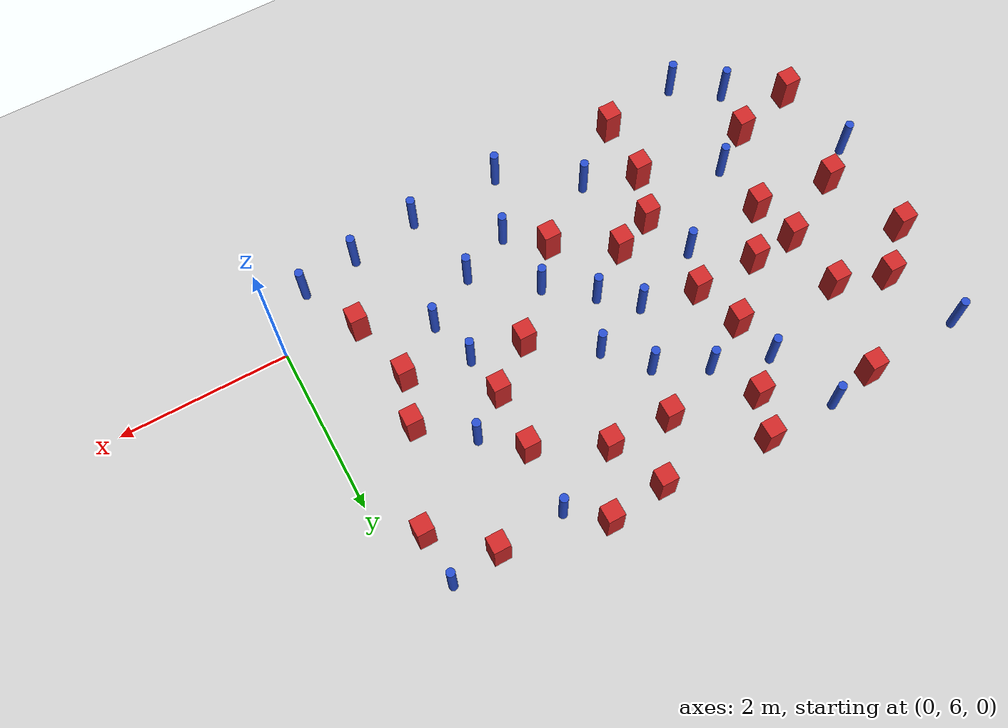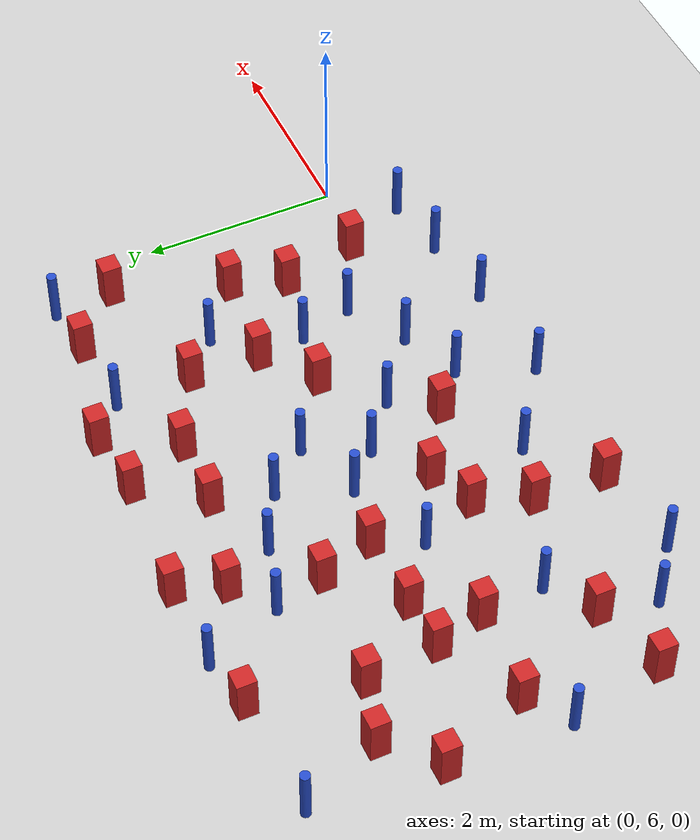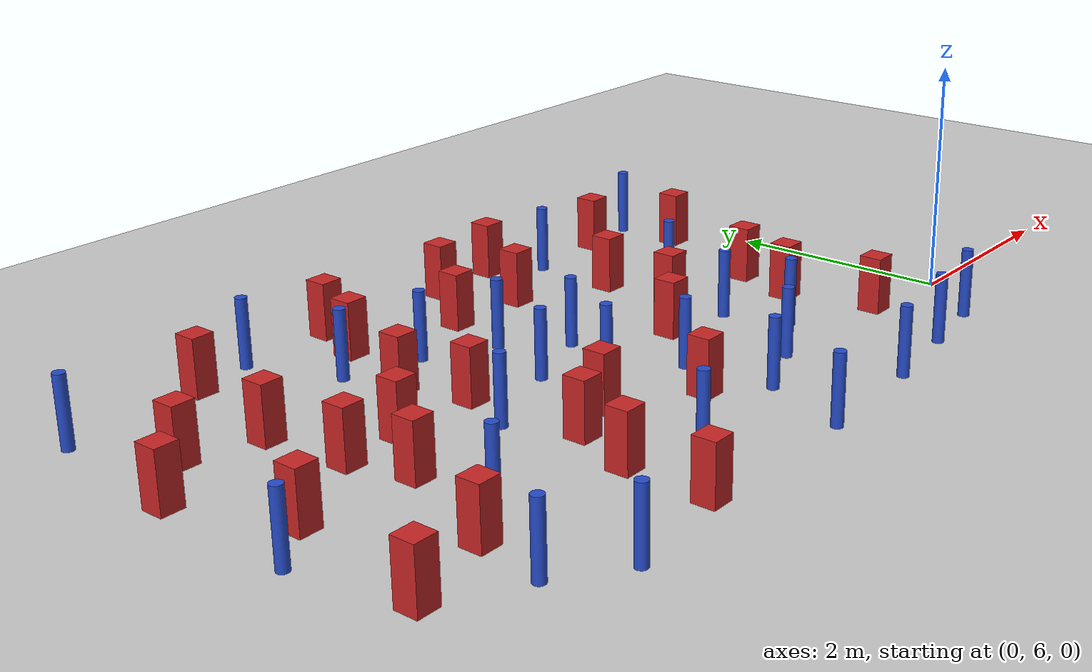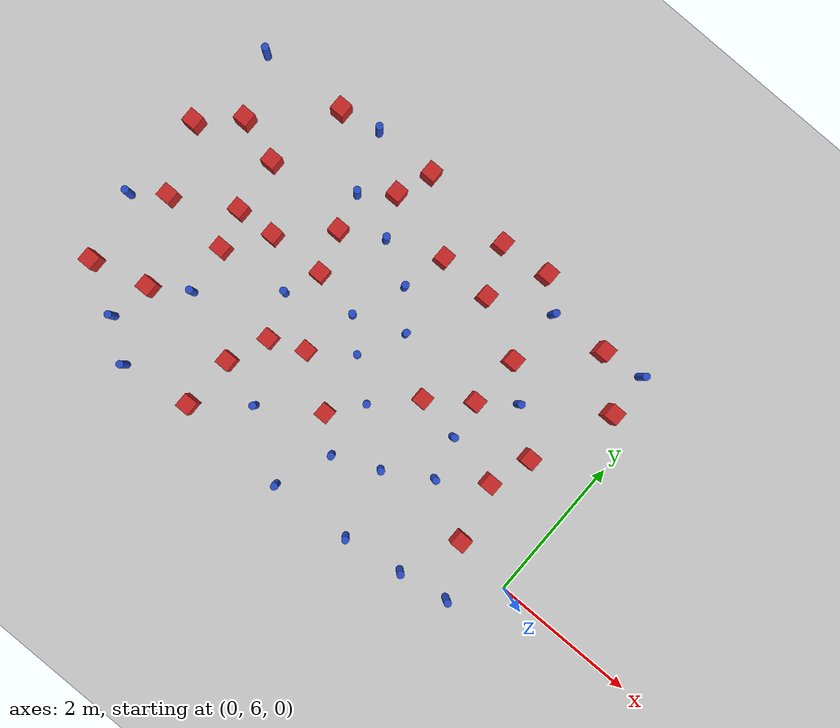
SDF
<sdf version="1.6">
 <world name="default">
  <model name="ground_plane">
   <static>1</static>
   <link name="link">
    <collision name="collision">
     <geometry><plane><normal>0 0 1</normal><size>100 100</size></plane></geometry>
     <surface><friction><ode><mu>100</mu><mu2>50</mu2></ode></friction></surface>
    </collision>
    <visual name="visual">
     <cast_shadows>0</cast_shadows>
     <geometry><plane><normal>0 0 1</normal><size>100 100</size></plane></geometry>
     <material>
      <ambient>1.0 1.0 1.0 1.0</ambient>
      <diffuse>0.8 0.8 0.8 1.0</diffuse>
      <specular>0.01 0.01 0.01 1.000000</specular>
     </material>
    </visual>
   </link>
  </model>
  <model name="pole_obstacle0">
   <static>true</static>
   <pose>-5.57891861028 5.05401400103 2.88873142074e-08 -9.90536690842e-09 4.60219948965e-07 -1.20965994976e-07</pose>
   <link name="link">
    <pose>0 0 0.3 0 -0 0</pose>
    <inertial>
     <mass>1</mass>
     <inertia><ixx>0.145833</ixx><ixy>0</ixy><ixz>0</ixz><iyy>0.145833</iyy><iyz>0</iyz><izz>0.125</izz></inertia>
    </inertial>
    <collision name="collision">
     <geometry><cylinder><radius>0.05</radius><length>.6</length></cylinder></geometry>
    </collision>
    <visual name="visual">
     <geometry><cylinder><radius>0.05</radius><length>.6</length></cylinder></geometry>
     <material>
      <script><name>Gazebo/Blue</name><uri>file://media/materials/scripts/gazebo.material</uri></script>
     </material>
    </visual>
   </link>
  </model>
  <model name="pole_obstacle5">
   <static>true</static>
   <pose>-6.9456775595 6.76392135129 2.88873142074e-08 -9.90536690842e-09 4.60219948965e-07 -1.20965994976e-07</pose>
   <link name="link">
    <pose>0 0 0.3 0 -0 0</pose>
    <inertial>
     <mass>1</mass>
     <inertia><ixx>0.145833</ixx><ixy>0</ixy><ixz>0</ixz><iyy>0.145833</iyy><iyz>0</iyz><izz>0.125</izz></inertia>
    </inertial>
    <collision name="collision">
     <geometry><cylinder><radius>0.05</radius><length>.6</length></cylinder></geometry>
    </collision>
    <visual name="visual">
     <geometry><cylinder><radius>0.05</radius><length>.6</length></cylinder></geometry>
     <material>
      <script><name>Gazebo/Blue</name><uri>file://media/materials/scripts/gazebo.material</uri></script>
     </material>
    </visual>
   </link>
  </model>
  <model name="square_post_obstacle10">
   <static>true</static>
   <pose>-6.53122453917 7.0693868356 8.22691968438e-08 7.2212513382e-06 -7.54495500217e-07 2.29674213826e-05</pose>
   <link name="link">
    <pose>0 0 0.25 0 -0 0</pose>
    <inertial>
     <mass>100</mass>
     <inertia>
      <ixx>0.166667</ixx>
      <ixy>0</ixy>
      <ixz>0</ixz>
      <iyy>0.166667</iyy>
      <iyz>0</iyz>
      <izz>0.166667</izz>
     </inertia>
    </inertial>
    <collision name="collision"><geometry><box><size>.2 .2 .5</size></box></geometry></collision>
    <visual name="visual">
     <geometry><box><size>.2 .2 .5</size></box></geometry>
     <material>
      <script><name>Gazebo/Red</name><uri>file://media/materials/scripts/gazebo.material</uri></script>
     </material>
    </visual>
   </link>
  </model>
  <model name="pole_obstacle26">
   <static>true</static>
   <pose>-3.11296527063 5.13809794333 2.88873142074e-08 -9.90536689859e-09 4.60219948989e-07 -1.20965994961e-07</pose>
   <link name="link">
    <pose>0 0 0.3 0 -0 0</pose>
    <inertial>
     <mass>1</mass>
     <inertia><ixx>0.145833</ixx><ixy>0</ixy><ixz>0</ixz><iyy>0.145833</iyy><iyz>0</iyz><izz>0.125</izz></inertia>
    </inertial>
    <collision name="collision">
     <geometry><cylinder><radius>0.05</radius><length>.6</length></cylinder></geometry>
    </collision>
    <visual name="visual">
     <geometry><cylinder><radius>0.05</radius><length>.6</length></cylinder></geometry>
     <material>
      <script><name>Gazebo/Blue</name><uri>file://media/materials/scripts/gazebo.material</uri></script>
     </material>
    </visual>
   </link>
  </model>
  <model name="square_post_obstacle20">
   <static>true</static>
   <pose>-0.419759920037 8.596462491 8.22691968438e-08 7.22125133819e-06 -7.54495500217e-07 2.29674213826e-05</pose>
   <link name="link">
    <pose>0 0 0.25 0 -0 0</pose>
    <inertial>
     <mass>100</mass>
     <inertia>
      <ixx>0.166667</ixx>
      <ixy>0</ixy>
      <ixz>0</ixz>
      <iyy>0.166667</iyy>
      <iyz>0</iyz>
      <izz>0.166667</izz>
     </inertia>
    </inertial>
    <collision name="collision"><geometry><box><size>.2 .2 .5</size></box></geometry></collision>
    <visual name="visual">
     <geometry><box><size>.2 .2 .5</size></box></geometry>
     <material>
      <script><name>Gazebo/Red</name><uri>file://media/materials/scripts/gazebo.material</uri></script>
     </material>
    </visual>
   </link>
  </model>
  <model name="square_post_obstacle22">
   <static>true</static>
   <pose>-3.22323207701 6.24411409598 8.22691968438e-08 7.2212513382e-06 -7.54495500217e-07 2.29674213826e-05</pose>
   <link name="link">
    <pose>0 0 0.25 0 -0 0</pose>
    <inertial>
     <mass>100</mass>
     <inertia>
      <ixx>0.166667</ixx>
      <ixy>0</ixy>
      <ixz>0</ixz>
      <iyy>0.166667</iyy>
      <iyz>0</iyz>
      <izz>0.166667</izz>
     </inertia>
    </inertial>
    <collision name="collision"><geometry><box><size>.2 .2 .5</size></box></geometry></collision>
    <visual name="visual">
     <geometry><box><size>.2 .2 .5</size></box></geometry>
     <material>
      <script><name>Gazebo/Red</name><uri>file://media/materials/scripts/gazebo.material</uri></script>
     </material>
    </visual>
   </link>
  </model>
  <model name="square_post_obstacle24">
   <static>true</static>
   <pose>-5.19579797531 7.54182395175 8.22691968438e-08 7.2212513382e-06 -7.54495500217e-07 2.29674213826e-05</pose>
   <link name="link">
    <pose>0 0 0.25 0 -0 0</pose>
    <inertial>
     <mass>100</mass>
     <inertia>
      <ixx>0.166667</ixx>
      <ixy>0</ixy>
      <ixz>0</ixz>
      <iyy>0.166667</iyy>
      <iyz>0</iyz>
      <izz>0.166667</izz>
     </inertia>
    </inertial>
    <collision name="collision"><geometry><box><size>.2 .2 .5</size></box></geometry></collision>
    <visual name="visual">
     <geometry><box><size>.2 .2 .5</size></box></geometry>
     <material>
      <script><name>Gazebo/Red</name><uri>file://media/materials/scripts/gazebo.material</uri></script>
     </material>
    </visual>
   </link>
  </model>
  <model name="pole_obstacle35">
   <static>true</static>
   <pose>-5.51759673734 6.32743386519 2.88873142074e-08 -9.90536690842e-09 4.60219948965e-07 -1.20965994976e-07</pose>
   <link name="link">
    <pose>0 0 0.3 0 -0 0</pose>
    <inertial>
     <mass>1</mass>
     <inertia><ixx>0.145833</ixx><ixy>0</ixy><ixz>0</ixz><iyy>0.145833</iyy><iyz>0</iyz><izz>0.125</izz></inertia>
    </inertial>
    <collision name="collision">
     <geometry><cylinder><radius>0.05</radius><length>.6</length></cylinder></geometry>
    </collision>
    <visual name="visual">
     <geometry><cylinder><radius>0.05</radius><length>.6</length></cylinder></geometry>
     <material>
      <script><name>Gazebo/Blue</name><uri>file://media/materials/scripts/gazebo.material</uri></script>
     </material>
    </visual>
   </link>
  </model>
  <model name="square_post_obstacle33">
   <static>true</static>
   <pose>-2.6142588795 8.70231124438 8.22691968438e-08 7.22125133819e-06 -7.54495500217e-07 2.29674213826e-05</pose>
   <link name="link">
    <pose>0 0 0.25 0 -0 0</pose>
    <inertial>
     <mass>100</mass>
     <inertia>
      <ixx>0.166667</ixx>
      <ixy>0</ixy>
      <ixz>0</ixz>
      <iyy>0.166667</iyy>
      <iyz>0</iyz>
      <izz>0.166667</izz>
     </inertia>
    </inertial>
    <collision name="collision"><geometry><box><size>.2 .2 .5</size></box></geometry></collision>
    <visual name="visual">
     <geometry><box><size>.2 .2 .5</size></box></geometry>
     <material>
      <script><name>Gazebo/Red</name><uri>file://media/materials/scripts/gazebo.material</uri></script>
     </material>
    </visual>
   </link>
  </model>
  <model name="pole_obstacle43">
   <static>true</static>
   <pose>-4.72144073114 8.64065696206 2.88873142074e-08 -9.9053668967e-09 4.60219948993e-07 -1.20965994957e-07</pose>
   <link name="link">
    <pose>0 0 0.3 0 -0 0</pose>
    <inertial>
     <mass>1</mass>
     <inertia><ixx>0.145833</ixx><ixy>0</ixy><ixz>0</ixz><iyy>0.145833</iyy><iyz>0</iyz><izz>0.125</izz></inertia>
    </inertial>
    <collision name="collision">
     <geometry><cylinder><radius>0.05</radius><length>.6</length></cylinder></geometry>
    </collision>
    <visual name="visual">
     <geometry><cylinder><radius>0.05</radius><length>.6</length></cylinder></geometry>
     <material>
      <script><name>Gazebo/Blue</name><uri>file://media/materials/scripts/gazebo.material</uri></script>
     </material>
    </visual>
   </link>
  </model>
  <model name="pole_obstacle47">
   <static>true</static>
   <pose>-5.02357856834 9.43363360993 2.88873142074e-08 -9.9053668967e-09 4.60219948993e-07 -1.20965994957e-07</pose>
   <link name="link">
    <pose>0 0 0.3 0 -0 0</pose>
    <inertial>
     <mass>1</mass>
     <inertia><ixx>0.145833</ixx><ixy>0</ixy><ixz>0</ixz><iyy>0.145833</iyy><iyz>0</iyz><izz>0.125</izz></inertia>
    </inertial>
    <collision name="collision">
     <geometry><cylinder><radius>0.05</radius><length>.6</length></cylinder></geometry>
    </collision>
    <visual name="visual">
     <geometry><cylinder><radius>0.05</radius><length>.6</length></cylinder></geometry>
     <material>
      <script><name>Gazebo/Blue</name><uri>file://media/materials/scripts/gazebo.material</uri></script>
     </material>
    </visual>
   </link>
  </model>
  <model name="pole_obstacle54">
   <static>true</static>
   <pose>-3.76575025793 7.42224762915 2.88873142074e-08 -9.90536689859e-09 4.60219948989e-07 -1.20965994961e-07</pose>
   <link name="link">
    <pose>0 0 0.3 0 -0 0</pose>
    <inertial>
     <mass>1</mass>
     <inertia><ixx>0.145833</ixx><ixy>0</ixy><ixz>0</ixz><iyy>0.145833</iyy><iyz>0</iyz><izz>0.125</izz></inertia>
    </inertial>
    <collision name="collision">
     <geometry><cylinder><radius>0.05</radius><length>.6</length></cylinder></geometry>
    </collision>
    <visual name="visual">
     <geometry><cylinder><radius>0.05</radius><length>.6</length></cylinder></geometry>
     <material>
      <script><name>Gazebo/Blue</name><uri>file://media/materials/scripts/gazebo.material</uri></script>
     </material>
    </visual>
   </link>
  </model>
  <model name="square_post_obstacle43">
   <static>true</static>
   <pose>-1.8283914266 8.29833452557 8.22691968438e-08 7.22125133819e-06 -7.54495500217e-07 2.29674213826e-05</pose>
   <link name="link">
    <pose>0 0 0.25 0 -0 0</pose>
    <inertial>
     <mass>100</mass>
     <inertia>
      <ixx>0.166667</ixx>
      <ixy>0</ixy>
      <ixz>0</ixz>
      <iyy>0.166667</iyy>
      <iyz>0</iyz>
      <izz>0.166667</izz>
     </inertia>
    </inertial>
    <collision name="collision"><geometry><box><size>.2 .2 .5</size></box></geometry></collision>
    <visual name="visual">
     <geometry><box><size>.2 .2 .5</size></box></geometry>
     <material>
      <script><name>Gazebo/Red</name><uri>file://media/materials/scripts/gazebo.material</uri></script>
     </material>
    </visual>
   </link>
  </model>
  <model name="square_post_obstacle64">
   <static>true</static>
   <pose>-3.91917284136 6.69324111417 8.22691968438e-08 7.2212513382e-06 -7.54495500217e-07 2.29674213826e-05</pose>
   <link name="link">
    <pose>0 0 0.25 0 -0 0</pose>
    <inertial>
     <mass>100</mass>
     <inertia>
      <ixx>0.166667</ixx>
      <ixy>0</ixy>
      <ixz>0</ixz>
      <iyy>0.166667</iyy>
      <iyz>0</iyz>
      <izz>0.166667</izz>
     </inertia>
    </inertial>
    <collision name="collision"><geometry><box><size>.2 .2 .5</size></box></geometry></collision>
    <visual name="visual">
     <geometry><box><size>.2 .2 .5</size></box></geometry>
     <material>
      <script><name>Gazebo/Red</name><uri>file://media/materials/scripts/gazebo.material</uri></script>
     </material>
    </visual>
   </link>
  </model>
  <model name="square_post_obstacle70">
   <static>true</static>
   <pose>-5.56504112645 9.3236796473 8.22691968438e-08 7.22125133819e-06 -7.54495500217e-07 2.29674213826e-05</pose>
   <link name="link">
    <pose>0 0 0.25 0 -0 0</pose>
    <inertial>
     <mass>100</mass>
     <inertia>
      <ixx>0.166667</ixx>
      <ixy>0</ixy>
      <ixz>0</ixz>
      <iyy>0.166667</iyy>
      <iyz>0</iyz>
      <izz>0.166667</izz>
     </inertia>
    </inertial>
    <collision name="collision"><geometry><box><size>.2 .2 .5</size></box></geometry></collision>
    <visual name="visual">
     <geometry><box><size>.2 .2 .5</size></box></geometry>
     <material>
      <script><name>Gazebo/Red</name><uri>file://media/materials/scripts/gazebo.material</uri></script>
     </material>
    </visual>
   </link>
  </model>
  <model name="pole_obstacle82">
   <static>true</static>
   <pose>-3.48963450074 8.12697911955 2.88873142074e-08 -9.9053668994e-09 4.60219948987e-07 -1.20965994963e-07</pose>
   <link name="link">
    <pose>0 0 0.3 0 -0 0</pose>
    <inertial>
     <mass>1</mass>
     <inertia><ixx>0.145833</ixx><ixy>0</ixy><ixz>0</ixz><iyy>0.145833</iyy><iyz>0</iyz><izz>0.125</izz></inertia>
    </inertial>
    <collision name="collision">
     <geometry><cylinder><radius>0.05</radius><length>.6</length></cylinder></geometry>
    </collision>
    <visual name="visual">
     <geometry><cylinder><radius>0.05</radius><length>.6</length></cylinder></geometry>
     <material>
      <script><name>Gazebo/Blue</name><uri>file://media/materials/scripts/gazebo.material</uri></script>
     </material>
    </visual>
   </link>
  </model>
  <model name="square_post_obstacle72">
   <static>true</static>
   <pose>-5.81052839452 8.25103124499 8.22691968438e-08 7.22125133819e-06 -7.54495500217e-07 2.29674213826e-05</pose>
   <link name="link">
    <pose>0 0 0.25 0 -0 0</pose>
    <inertial>
     <mass>100</mass>
     <inertia>
      <ixx>0.166667</ixx>
      <ixy>0</ixy>
      <ixz>0</ixz>
      <iyy>0.166667</iyy>
      <iyz>0</iyz>
      <izz>0.166667</izz>
     </inertia>
    </inertial>
    <collision name="collision"><geometry><box><size>.2 .2 .5</size></box></geometry></collision>
    <visual name="visual">
     <geometry><box><size>.2 .2 .5</size></box></geometry>
     <material>
      <script><name>Gazebo/Red</name><uri>file://media/materials/scripts/gazebo.material</uri></script>
     </material>
    </visual>
   </link>
  </model>
  <model name="square_post_obstacle81">
   <static>true</static>
   <pose>-1.03929450827 6.91394550762 8.22691968438e-08 7.2212513382e-06 -7.54495500217e-07 2.29674213826e-05</pose>
   <link name="link">
    <pose>0 0 0.25 0 -0 0</pose>
    <inertial>
     <mass>100</mass>
     <inertia>
      <ixx>0.166667</ixx>
      <ixy>0</ixy>
      <ixz>0</ixz>
      <iyy>0.166667</iyy>
      <iyz>0</iyz>
      <izz>0.166667</izz>
     </inertia>
    </inertial>
    <collision name="collision"><geometry><box><size>.2 .2 .5</size></box></geometry></collision>
    <visual name="visual">
     <geometry><box><size>.2 .2 .5</size></box></geometry>
     <material>
      <script><name>Gazebo/Red</name><uri>file://media/materials/scripts/gazebo.material</uri></script>
     </material>
    </visual>
   </link>
  </model>
  <model name="square_post_obstacle87">
   <static>true</static>
   <pose>-4.33491041556 8.96253109662 8.22691968438e-08 7.22125133819e-06 -7.54495500217e-07 2.29674213826e-05</pose>
   <link name="link">
    <pose>0 0 0.25 0 -0 0</pose>
    <inertial>
     <mass>100</mass>
     <inertia>
      <ixx>0.166667</ixx>
      <ixy>0</ixy>
      <ixz>0</ixz>
      <iyy>0.166667</iyy>
      <iyz>0</iyz>
      <izz>0.166667</izz>
     </inertia>
    </inertial>
    <collision name="collision"><geometry><box><size>.2 .2 .5</size></box></geometry></collision>
    <visual name="visual">
     <geometry><box><size>.2 .2 .5</size></box></geometry>
     <material>
      <script><name>Gazebo/Red</name><uri>file://media/materials/scripts/gazebo.material</uri></script>
     </material>
    </visual>
   </link>
  </model>
  <model name="pole_obstacle96">
   <static>true</static>
   <pose>-0.443224371358 9.20321912783 2.88873142074e-08 -9.90536691079e-09 4.6021994896e-07 -1.2096599498e-07</pose>
   <link name="link">
    <pose>0 0 0.3 0 -0 0</pose>
    <inertial>
     <mass>1</mass>
     <inertia><ixx>0.145833</ixx><ixy>0</ixy><ixz>0</ixz><iyy>0.145833</iyy><iyz>0</iyz><izz>0.125</izz></inertia>
    </inertial>
    <collision name="collision">
     <geometry><cylinder><radius>0.05</radius><length>.6</length></cylinder></geometry>
    </collision>
    <visual name="visual">
     <geometry><cylinder><radius>0.05</radius><length>.6</length></cylinder></geometry>
     <material>
      <script><name>Gazebo/Blue</name><uri>file://media/materials/scripts/gazebo.material</uri></script>
     </material>
    </visual>
   </link>
  </model>
  <model name="square_post_obstacle95">
   <static>true</static>
   <pose>-6.42129869142 8.44312369165 8.22691968438e-08 7.22125133819e-06 -7.54495500217e-07 2.29674213826e-05</pose>
   <link name="link">
    <pose>0 0 0.25 0 -0 0</pose>
    <inertial>
     <mass>100</mass>
     <inertia>
      <ixx>0.166667</ixx>
      <ixy>0</ixy>
      <ixz>0</ixz>
      <iyy>0.166667</iyy>
      <iyz>0</iyz>
      <izz>0.166667</izz>
     </inertia>
    </inertial>
    <collision name="collision"><geometry><box><size>.2 .2 .5</size></box></geometry></collision>
    <visual name="visual">
     <geometry><box><size>.2 .2 .5</size></box></geometry>
     <material>
      <script><name>Gazebo/Red</name><uri>file://media/materials/scripts/gazebo.material</uri></script>
     </material>
    </visual>
   </link>
  </model>
  <model name="square_post_obstacle96">
   <static>true</static>
   <pose>-2.89417581011 9.34482976148 8.22691968438e-08 7.22125133819e-06 -7.54495500217e-07 2.29674213826e-05</pose>
   <link name="link">
    <pose>0 0 0.25 0 -0 0</pose>
    <inertial>
     <mass>100</mass>
     <inertia>
      <ixx>0.166667</ixx>
      <ixy>0</ixy>
      <ixz>0</ixz>
      <iyy>0.166667</iyy>
      <iyz>0</iyz>
      <izz>0.166667</izz>
     </inertia>
    </inertial>
    <collision name="collision"><geometry><box><size>.2 .2 .5</size></box></geometry></collision>
    <visual name="visual">
     <geometry><box><size>.2 .2 .5</size></box></geometry>
     <material>
      <script><name>Gazebo/Red</name><uri>file://media/materials/scripts/gazebo.material</uri></script>
     </material>
    </visual>
   </link>
  </model>
  <model name="pole_obstacle105">
   <static>true</static>
   <pose>-0.507849724913 5.42630105693 2.88873142074e-08 -9.90536689526e-09 4.60219948997e-07 -1.20965994955e-07</pose>
   <link name="link">
    <pose>0 0 0.3 0 -0 0</pose>
    <inertial>
     <mass>1</mass>
     <inertia><ixx>0.145833</ixx><ixy>0</ixy><ixz>0</ixz><iyy>0.145833</iyy><iyz>0</iyz><izz>0.125</izz></inertia>
    </inertial>
    <collision name="collision">
     <geometry><cylinder><radius>0.05</radius><length>.6</length></cylinder></geometry>
    </collision>
    <visual name="visual">
     <geometry><cylinder><radius>0.05</radius><length>.6</length></cylinder></geometry>
     <material>
      <script><name>Gazebo/Blue</name><uri>file://media/materials/scripts/gazebo.material</uri></script>
     </material>
    </visual>
   </link>
  </model>
  <model name="square_post_obstacle101">
   <static>true</static>
   <pose>-5.98499967958 6.01644338964 8.22691968438e-08 7.2212513382e-06 -7.54495500217e-07 2.29674213826e-05</pose>
   <link name="link">
    <pose>0 0 0.25 0 -0 0</pose>
    <inertial>
     <mass>100</mass>
     <inertia>
      <ixx>0.166667</ixx>
      <ixy>0</ixy>
      <ixz>0</ixz>
      <iyy>0.166667</iyy>
      <iyz>0</iyz>
      <izz>0.166667</izz>
     </inertia>
    </inertial>
    <collision name="collision"><geometry><box><size>.2 .2 .5</size></box></geometry></collision>
    <visual name="visual">
     <geometry><box><size>.2 .2 .5</size></box></geometry>
     <material>
      <script><name>Gazebo/Red</name><uri>file://media/materials/scripts/gazebo.material</uri></script>
     </material>
    </visual>
   </link>
  </model>
  <model name="pole_obstacle110">
   <static>true</static>
   <pose>-1.81818910731 9.08077222713 2.88873142074e-08 -9.90536690474e-09 4.60219948974e-07 -1.2096599497e-07</pose>
   <link name="link">
    <pose>0 0 0.3 0 -0 0</pose>
    <inertial>
     <mass>1</mass>
     <inertia><ixx>0.145833</ixx><ixy>0</ixy><ixz>0</ixz><iyy>0.145833</iyy><iyz>0</iyz><izz>0.125</izz></inertia>
    </inertial>
    <collision name="collision">
     <geometry><cylinder><radius>0.05</radius><length>.6</length></cylinder></geometry>
    </collision>
    <visual name="visual">
     <geometry><cylinder><radius>0.05</radius><length>.6</length></cylinder></geometry>
     <material>
      <script><name>Gazebo/Blue</name><uri>file://media/materials/scripts/gazebo.material</uri></script>
     </material>
    </visual>
   </link>
  </model>
  <model name="pole_obstacle112">
   <static>true</static>
   <pose>-6.76005701278 9.26242866669 2.88873142074e-08 -9.9053668967e-09 4.60219948993e-07 -1.20965994957e-07</pose>
   <link name="link">
    <pose>0 0 0.3 0 -0 0</pose>
    <inertial>
     <mass>1</mass>
     <inertia><ixx>0.145833</ixx><ixy>0</ixy><ixz>0</ixz><iyy>0.145833</iyy><iyz>0</iyz><izz>0.125</izz></inertia>
    </inertial>
    <collision name="collision">
     <geometry><cylinder><radius>0.05</radius><length>.6</length></cylinder></geometry>
    </collision>
    <visual name="visual">
     <geometry><cylinder><radius>0.05</radius><length>.6</length></cylinder></geometry>
     <material>
      <script><name>Gazebo/Blue</name><uri>file://media/materials/scripts/gazebo.material</uri></script>
     </material>
    </visual>
   </link>
  </model>
  <model name="pole_obstacle113">
   <static>true</static>
   <pose>-1.41113026519 7.92368047018 2.88873142074e-08 -9.90536689852e-09 4.60219948989e-07 -1.2096599496e-07</pose>
   <link name="link">
    <pose>0 0 0.3 0 -0 0</pose>
    <inertial>
     <mass>1</mass>
     <inertia><ixx>0.145833</ixx><ixy>0</ixy><ixz>0</ixz><iyy>0.145833</iyy><iyz>0</iyz><izz>0.125</izz></inertia>
    </inertial>
    <collision name="collision">
     <geometry><cylinder><radius>0.05</radius><length>.6</length></cylinder></geometry>
    </collision>
    <visual name="visual">
     <geometry><cylinder><radius>0.05</radius><length>.6</length></cylinder></geometry>
     <material>
      <script><name>Gazebo/Blue</name><uri>file://media/materials/scripts/gazebo.material</uri></script>
     </material>
    </visual>
   </link>
  </model>
  <model name="pole_obstacle114">
   <static>true</static>
   <pose>-1.61220837633 6.50415180608 2.88873142074e-08 -9.90536689852e-09 4.60219948989e-07 -1.2096599496e-07</pose>
   <link name="link">
    <pose>0 0 0.3 0 -0 0</pose>
    <inertial>
     <mass>1</mass>
     <inertia><ixx>0.145833</ixx><ixy>0</ixy><ixz>0</ixz><iyy>0.145833</iyy><iyz>0</iyz><izz>0.125</izz></inertia>
    </inertial>
    <collision name="collision">
     <geometry><cylinder><radius>0.05</radius><length>.6</length></cylinder></geometry>
    </collision>
    <visual name="visual">
     <geometry><cylinder><radius>0.05</radius><length>.6</length></cylinder></geometry>
     <material>
      <script><name>Gazebo/Blue</name><uri>file://media/materials/scripts/gazebo.material</uri></script>
     </material>
    </visual>
   </link>
  </model>
  <model name="square_post_obstacle114">
   <static>true</static>
   <pose>-5.72959952586 7.5103818812 8.22691968438e-08 7.22125133819e-06 -7.54495500217e-07 2.29674213826e-05</pose>
   <link name="link">
    <pose>0 0 0.25 0 -0 0</pose>
    <inertial>
     <mass>100</mass>
     <inertia>
      <ixx>0.166667</ixx>
      <ixy>0</ixy>
      <ixz>0</ixz>
      <iyy>0.166667</iyy>
      <iyz>0</iyz>
      <izz>0.166667</izz>
     </inertia>
    </inertial>
    <collision name="collision"><geometry><box><size>.2 .2 .5</size></box></geometry></collision>
    <visual name="visual">
     <geometry><box><size>.2 .2 .5</size></box></geometry>
     <material>
      <script><name>Gazebo/Red</name><uri>file://media/materials/scripts/gazebo.material</uri></script>
     </material>
    </visual>
   </link>
  </model>
  <model name="square_post_obstacle116">
   <static>true</static>
   <pose>-2.20853343337 9.41474988193 8.22691968438e-08 7.22125133819e-06 -7.54495500217e-07 2.29674213826e-05</pose>
   <link name="link">
    <pose>0 0 0.25 0 -0 0</pose>
    <inertial>
     <mass>100</mass>
     <inertia>
      <ixx>0.166667</ixx>
      <ixy>0</ixy>
      <ixz>0</ixz>
      <iyy>0.166667</iyy>
      <iyz>0</iyz>
      <izz>0.166667</izz>
     </inertia>
    </inertial>
    <collision name="collision"><geometry><box><size>.2 .2 .5</size></box></geometry></collision>
    <visual name="visual">
     <geometry><box><size>.2 .2 .5</size></box></geometry>
     <material>
      <script><name>Gazebo/Red</name><uri>file://media/materials/scripts/gazebo.material</uri></script>
     </material>
    </visual>
   </link>
  </model>
  <model name="square_post_obstacle124">
   <static>true</static>
   <pose>-0.852868042163 6.11687720599 8.22691968438e-08 7.2212513382e-06 -7.54495500217e-07 2.29674213826e-05</pose>
   <link name="link">
    <pose>0 0 0.25 0 -0 0</pose>
    <inertial>
     <mass>100</mass>
     <inertia>
      <ixx>0.166667</ixx>
      <ixy>0</ixy>
      <ixz>0</ixz>
      <iyy>0.166667</iyy>
      <iyz>0</iyz>
      <izz>0.166667</izz>
     </inertia>
    </inertial>
    <collision name="collision"><geometry><box><size>.2 .2 .5</size></box></geometry></collision>
    <visual name="visual">
     <geometry><box><size>.2 .2 .5</size></box></geometry>
     <material>
      <script><name>Gazebo/Red</name><uri>file://media/materials/scripts/gazebo.material</uri></script>
     </material>
    </visual>
   </link>
  </model>
  <model name="square_post_obstacle126">
   <static>true</static>
   <pose>-4.42297959339 7.55997669663 8.22691968438e-08 7.2212513382e-06 -7.54495500217e-07 2.29674213826e-05</pose>
   <link name="link">
    <pose>0 0 0.25 0 -0 0</pose>
    <inertial>
     <mass>100</mass>
     <inertia>
      <ixx>0.166667</ixx>
      <ixy>0</ixy>
      <ixz>0</ixz>
      <iyy>0.166667</iyy>
      <iyz>0</iyz>
      <izz>0.166667</izz>
     </inertia>
    </inertial>
    <collision name="collision"><geometry><box><size>.2 .2 .5</size></box></geometry></collision>
    <visual name="visual">
     <geometry><box><size>.2 .2 .5</size></box></geometry>
     <material>
      <script><name>Gazebo/Red</name><uri>file://media/materials/scripts/gazebo.material</uri></script>
     </material>
    </visual>
   </link>
  </model>
  <model name="square_post_obstacle127">
   <static>true</static>
   <pose>-6.75137938797 5.8092934379 8.22691968438e-08 7.22125133819e-06 -7.54495500217e-07 2.29674213826e-05</pose>
   <link name="link">
    <pose>0 0 0.25 0 -0 0</pose>
    <inertial>
     <mass>100</mass>
     <inertia>
      <ixx>0.166667</ixx>
      <ixy>0</ixy>
      <ixz>0</ixz>
      <iyy>0.166667</iyy>
      <iyz>0</iyz>
      <izz>0.166667</izz>
     </inertia>
    </inertial>
    <collision name="collision"><geometry><box><size>.2 .2 .5</size></box></geometry></collision>
    <visual name="visual">
     <geometry><box><size>.2 .2 .5</size></box></geometry>
     <material>
      <script><name>Gazebo/Red</name><uri>file://media/materials/scripts/gazebo.material</uri></script>
     </material>
    </visual>
   </link>
  </model>
  <model name="pole_obstacle139">
   <static>true</static>
   <pose>-3.09072428553 7.67764305186 2.88873142074e-08 -9.90536689859e-09 4.60219948989e-07 -1.20965994961e-07</pose>
   <link name="link">
    <pose>0 0 0.3 0 -0 0</pose>
    <inertial>
     <mass>1</mass>
     <inertia><ixx>0.145833</ixx><ixy>0</ixy><ixz>0</ixz><iyy>0.145833</iyy><iyz>0</iyz><izz>0.125</izz></inertia>
    </inertial>
    <collision name="collision">
     <geometry><cylinder><radius>0.05</radius><length>.6</length></cylinder></geometry>
    </collision>
    <visual name="visual">
     <geometry><cylinder><radius>0.05</radius><length>.6</length></cylinder></geometry>
     <material>
      <script><name>Gazebo/Blue</name><uri>file://media/materials/scripts/gazebo.material</uri></script>
     </material>
    </visual>
   </link>
  </model>
  <model name="square_post_obstacle136">
   <static>true</static>
   <pose>-2.39104929264 7.18079778772 8.22691968438e-08 7.2212513382e-06 -7.54495500217e-07 2.29674213826e-05</pose>
   <link name="link">
    <pose>0 0 0.25 0 -0 0</pose>
    <inertial>
     <mass>100</mass>
     <inertia>
      <ixx>0.166667</ixx>
      <ixy>0</ixy>
      <ixz>0</ixz>
      <iyy>0.166667</iyy>
      <iyz>0</iyz>
      <izz>0.166667</izz>
     </inertia>
    </inertial>
    <collision name="collision"><geometry><box><size>.2 .2 .5</size></box></geometry></collision>
    <visual name="visual">
     <geometry><box><size>.2 .2 .5</size></box></geometry>
     <material>
      <script><name>Gazebo/Red</name><uri>file://media/materials/scripts/gazebo.material</uri></script>
     </material>
    </visual>
   </link>
  </model>
  <model name="pole_obstacle147">
   <static>true</static>
   <pose>-2.89303400616 6.67125134117 2.88873142074e-08 -9.90536689859e-09 4.60219948989e-07 -1.20965994961e-07</pose>
   <link name="link">
    <pose>0 0 0.3 0 -0 0</pose>
    <inertial>
     <mass>1</mass>
     <inertia><ixx>0.145833</ixx><ixy>0</ixy><ixz>0</ixz><iyy>0.145833</iyy><iyz>0</iyz><izz>0.125</izz></inertia>
    </inertial>
    <collision name="collision">
     <geometry><cylinder><radius>0.05</radius><length>.6</length></cylinder></geometry>
    </collision>
    <visual name="visual">
     <geometry><cylinder><radius>0.05</radius><length>.6</length></cylinder></geometry>
     <material>
      <script><name>Gazebo/Blue</name><uri>file://media/materials/scripts/gazebo.material</uri></script>
     </material>
    </visual>
   </link>
  </model>
  <model name="square_post_obstacle142">
   <static>true</static>
   <pose>-4.60203687464 5.94385006545 8.22691968438e-08 7.2212513382e-06 -7.54495500217e-07 2.29674213826e-05</pose>
   <link name="link">
    <pose>0 0 0.25 0 -0 0</pose>
    <inertial>
     <mass>100</mass>
     <inertia>
      <ixx>0.166667</ixx>
      <ixy>0</ixy>
      <ixz>0</ixz>
      <iyy>0.166667</iyy>
      <iyz>0</iyz>
      <izz>0.166667</izz>
     </inertia>
    </inertial>
    <collision name="collision"><geometry><box><size>.2 .2 .5</size></box></geometry></collision>
    <visual name="visual">
     <geometry><box><size>.2 .2 .5</size></box></geometry>
     <material>
      <script><name>Gazebo/Red</name><uri>file://media/materials/scripts/gazebo.material</uri></script>
     </material>
    </visual>
   </link>
  </model>
  <model name="pole_obstacle155">
   <static>true</static>
   <pose>-4.61039042547 7.08168243301 2.88873142074e-08 -9.90536690842e-09 4.60219948965e-07 -1.20965994976e-07</pose>
   <link name="link">
    <pose>0 0 0.3 0 -0 0</pose>
    <inertial>
     <mass>1</mass>
     <inertia><ixx>0.145833</ixx><ixy>0</ixy><ixz>0</ixz><iyy>0.145833</iyy><iyz>0</iyz><izz>0.125</izz></inertia>
    </inertial>
    <collision name="collision">
     <geometry><cylinder><radius>0.05</radius><length>.6</length></cylinder></geometry>
    </collision>
    <visual name="visual">
     <geometry><cylinder><radius>0.05</radius><length>.6</length></cylinder></geometry>
     <material>
      <script><name>Gazebo/Blue</name><uri>file://media/materials/scripts/gazebo.material</uri></script>
     </material>
    </visual>
   </link>
  </model>
  <model name="square_post_obstacle152">
   <static>true</static>
   <pose>-4.16327347663 9.44290378722 8.22691968438e-08 7.22125133819e-06 -7.54495500217e-07 2.29674213826e-05</pose>
   <link name="link">
    <pose>0 0 0.25 0 -0 0</pose>
    <inertial>
     <mass>100</mass>
     <inertia>
      <ixx>0.166667</ixx>
      <ixy>0</ixy>
      <ixz>0</ixz>
      <iyy>0.166667</iyy>
      <iyz>0</iyz>
      <izz>0.166667</izz>
     </inertia>
    </inertial>
    <collision name="collision"><geometry><box><size>.2 .2 .5</size></box></geometry></collision>
    <visual name="visual">
     <geometry><box><size>.2 .2 .5</size></box></geometry>
     <material>
      <script><name>Gazebo/Red</name><uri>file://media/materials/scripts/gazebo.material</uri></script>
     </material>
    </visual>
   </link>
  </model>
  <model name="pole_obstacle158">
   <static>true</static>
   <pose>-3.97282030269 5.73217686249 2.88873142074e-08 -9.90536690054e-09 4.60219948984e-07 -1.20965994964e-07</pose>
   <link name="link">
    <pose>0 0 0.3 0 -0 0</pose>
    <inertial>
     <mass>1</mass>
     <inertia><ixx>0.145833</ixx><ixy>0</ixy><ixz>0</ixz><iyy>0.145833</iyy><iyz>0</iyz><izz>0.125</izz></inertia>
    </inertial>
    <collision name="collision">
     <geometry><cylinder><radius>0.05</radius><length>.6</length></cylinder></geometry>
    </collision>
    <visual name="visual">
     <geometry><cylinder><radius>0.05</radius><length>.6</length></cylinder></geometry>
     <material>
      <script><name>Gazebo/Blue</name><uri>file://media/materials/scripts/gazebo.material</uri></script>
     </material>
    </visual>
   </link>
  </model>
  <model name="square_post_obstacle162">
   <static>true</static>
   <pose>-4.38404041923 6.49928075124 8.22691968438e-08 7.22125133819e-06 -7.54495500217e-07 2.29674213826e-05</pose>
   <link name="link">
    <pose>0 0 0.25 0 -0 0</pose>
    <inertial>
     <mass>100</mass>
     <inertia>
      <ixx>0.166667</ixx>
      <ixy>0</ixy>
      <ixz>0</ixz>
      <iyy>0.166667</iyy>
      <iyz>0</iyz>
      <izz>0.166667</izz>
     </inertia>
    </inertial>
    <collision name="collision"><geometry><box><size>.2 .2 .5</size></box></geometry></collision>
    <visual name="visual">
     <geometry><box><size>.2 .2 .5</size></box></geometry>
     <material>
      <script><name>Gazebo/Red</name><uri>file://media/materials/scripts/gazebo.material</uri></script>
     </material>
    </visual>
   </link>
  </model>
  <model name="square_post_obstacle171">
   <static>true</static>
   <pose>-1.85521543495 7.58462084864 8.22691968438e-08 7.2212513382e-06 -7.54495500217e-07 2.29674213826e-05</pose>
   <link name="link">
    <pose>0 0 0.25 0 -0 0</pose>
    <inertial>
     <mass>100</mass>
     <inertia>
      <ixx>0.166667</ixx>
      <ixy>0</ixy>
      <ixz>0</ixz>
      <iyy>0.166667</iyy>
      <iyz>0</iyz>
      <izz>0.166667</izz>
     </inertia>
    </inertial>
    <collision name="collision"><geometry><box><size>.2 .2 .5</size></box></geometry></collision>
    <visual name="visual">
     <geometry><box><size>.2 .2 .5</size></box></geometry>
     <material>
      <script><name>Gazebo/Red</name><uri>file://media/materials/scripts/gazebo.material</uri></script>
     </material>
    </visual>
   </link>
  </model>
  <model name="pole_obstacle170">
   <static>true</static>
   <pose>-6.09835040776 5.43257280285 2.88873142074e-08 -9.90536690842e-09 4.60219948965e-07 -1.20965994976e-07</pose>
   <link name="link">
    <pose>0 0 0.3 0 -0 0</pose>
    <inertial>
     <mass>1</mass>
     <inertia><ixx>0.145833</ixx><ixy>0</ixy><ixz>0</ixz><iyy>0.145833</iyy><iyz>0</iyz><izz>0.125</izz></inertia>
    </inertial>
    <collision name="collision">
     <geometry><cylinder><radius>0.05</radius><length>.6</length></cylinder></geometry>
    </collision>
    <visual name="visual">
     <geometry><cylinder><radius>0.05</radius><length>.6</length></cylinder></geometry>
     <material>
      <script><name>Gazebo/Blue</name><uri>file://media/materials/scripts/gazebo.material</uri></script>
     </material>
    </visual>
   </link>
  </model>
  <model name="pole_obstacle171">
   <static>true</static>
   <pose>-3.39062524326 7.07097245644 2.88873142074e-08 -9.90536692062e-09 4.60219948937e-07 -1.20965994985e-07</pose>
   <link name="link">
    <pose>0 0 0.3 0 -0 0</pose>
    <inertial>
     <mass>1</mass>
     <inertia><ixx>0.145833</ixx><ixy>0</ixy><ixz>0</ixz><iyy>0.145833</iyy><iyz>0</iyz><izz>0.125</izz></inertia>
    </inertial>
    <collision name="collision">
     <geometry><cylinder><radius>0.05</radius><length>.6</length></cylinder></geometry>
    </collision>
    <visual name="visual">
     <geometry><cylinder><radius>0.05</radius><length>.6</length></cylinder></geometry>
     <material>
      <script><name>Gazebo/Blue</name><uri>file://media/materials/scripts/gazebo.material</uri></script>
     </material>
    </visual>
   </link>
  </model>
  <model name="pole_obstacle176">
   <static>true</static>
   <pose>-2.21392780671 6.14761793868 2.88873142074e-08 -9.90536689859e-09 4.60219948989e-07 -1.20965994961e-07</pose>
   <link name="link">
    <pose>0 0 0.3 0 -0 0</pose>
    <inertial>
     <mass>1</mass>
     <inertia><ixx>0.145833</ixx><ixy>0</ixy><ixz>0</ixz><iyy>0.145833</iyy><iyz>0</iyz><izz>0.125</izz></inertia>
    </inertial>
    <collision name="collision">
     <geometry><cylinder><radius>0.05</radius><length>.6</length></cylinder></geometry>
    </collision>
    <visual name="visual">
     <geometry><cylinder><radius>0.05</radius><length>.6</length></cylinder></geometry>
     <material>
      <script><name>Gazebo/Blue</name><uri>file://media/materials/scripts/gazebo.material</uri></script>
     </material>
    </visual>
   </link>
  </model>
  <model name="pole_obstacle179">
   <static>true</static>
   <pose>-1.77732134994 7.06510277668 2.88873142074e-08 -9.90536689852e-09 4.60219948989e-07 -1.2096599496e-07</pose>
   <link name="link">
    <pose>0 0 0.3 0 -0 0</pose>
    <inertial>
     <mass>1</mass>
     <inertia><ixx>0.145833</ixx><ixy>0</ixy><ixz>0</ixz><iyy>0.145833</iyy><iyz>0</iyz><izz>0.125</izz></inertia>
    </inertial>
    <collision name="collision">
     <geometry><cylinder><radius>0.05</radius><length>.6</length></cylinder></geometry>
    </collision>
    <visual name="visual">
     <geometry><cylinder><radius>0.05</radius><length>.6</length></cylinder></geometry>
     <material>
      <script><name>Gazebo/Blue</name><uri>file://media/materials/scripts/gazebo.material</uri></script>
     </material>
    </visual>
   </link>
  </model>
  <model name="square_post_obstacle178">
   <static>true</static>
   <pose>-5.58552979842 6.98756674252 8.22691968438e-08 7.2212513382e-06 -7.54495500217e-07 2.29674213826e-05</pose>
   <link name="link">
    <pose>0 0 0.25 0 -0 0</pose>
    <inertial>
     <mass>100</mass>
     <inertia>
      <ixx>0.166667</ixx>
      <ixy>0</ixy>
      <ixz>0</ixz>
      <iyy>0.166667</iyy>
      <iyz>0</iyz>
      <izz>0.166667</izz>
     </inertia>
    </inertial>
    <collision name="collision"><geometry><box><size>.2 .2 .5</size></box></geometry></collision>
    <visual name="visual">
     <geometry><box><size>.2 .2 .5</size></box></geometry>
     <material>
      <script><name>Gazebo/Red</name><uri>file://media/materials/scripts/gazebo.material</uri></script>
     </material>
    </visual>
   </link>
  </model>
  <model name="pole_obstacle182">
   <static>true</static>
   <pose>-1.18795293049 5.31733680655 2.88873142074e-08 -9.90536689852e-09 4.60219948989e-07 -1.2096599496e-07</pose>
   <link name="link">
    <pose>0 0 0.3 0 -0 0</pose>
    <inertial>
     <mass>1</mass>
     <inertia><ixx>0.145833</ixx><ixy>0</ixy><ixz>0</ixz><iyy>0.145833</iyy><iyz>0</iyz><izz>0.125</izz></inertia>
    </inertial>
    <collision name="collision">
     <geometry><cylinder><radius>0.05</radius><length>.6</length></cylinder></geometry>
    </collision>
    <visual name="visual">
     <geometry><cylinder><radius>0.05</radius><length>.6</length></cylinder></geometry>
     <material>
      <script><name>Gazebo/Blue</name><uri>file://media/materials/scripts/gazebo.material</uri></script>
     </material>
    </visual>
   </link>
  </model>
  <model name="square_post_obstacle193">
   <static>true</static>
   <pose>-6.89431683992 7.99619972195 8.22691968438e-08 7.22125133819e-06 -7.54495500217e-07 2.29674213826e-05</pose>
   <link name="link">
    <pose>0 0 0.25 0 -0 0</pose>
    <inertial>
     <mass>100</mass>
     <inertia>
      <ixx>0.166667</ixx>
      <ixy>0</ixy>
      <ixz>0</ixz>
      <iyy>0.166667</iyy>
      <iyz>0</iyz>
      <izz>0.166667</izz>
     </inertia>
    </inertial>
    <collision name="collision"><geometry><box><size>.2 .2 .5</size></box></geometry></collision>
    <visual name="visual">
     <geometry><box><size>.2 .2 .5</size></box></geometry>
     <material>
      <script><name>Gazebo/Red</name><uri>file://media/materials/scripts/gazebo.material</uri></script>
     </material>
    </visual>
   </link>
  </model>
  <model name="pole_obstacle188">
   <static>true</static>
   <pose>-2.81534713987 5.88559930483 2.88873142074e-08 -9.90536689859e-09 4.60219948989e-07 -1.20965994961e-07</pose>
   <link name="link">
    <pose>0 0 0.3 0 -0 0</pose>
    <inertial>
     <mass>1</mass>
     <inertia><ixx>0.145833</ixx><ixy>0</ixy><ixz>0</ixz><iyy>0.145833</iyy><iyz>0</iyz><izz>0.125</izz></inertia>
    </inertial>
    <collision name="collision">
     <geometry><cylinder><radius>0.05</radius><length>.6</length></cylinder></geometry>
    </collision>
    <visual name="visual">
     <geometry><cylinder><radius>0.05</radius><length>.6</length></cylinder></geometry>
     <material>
      <script><name>Gazebo/Blue</name><uri>file://media/materials/scripts/gazebo.material</uri></script>
     </material>
    </visual>
   </link>
  </model>
  <model name="square_post_obstacle201">
   <static>true</static>
   <pose>-0.857390681037 7.47637985893 8.22691968438e-08 7.2212513382e-06 -7.54495500217e-07 2.29674213826e-05</pose>
   <link name="link">
    <pose>0 0 0.25 0 -0 0</pose>
    <inertial>
     <mass>100</mass>
     <inertia>
      <ixx>0.166667</ixx>
      <ixy>0</ixy>
      <ixz>0</ixz>
      <iyy>0.166667</iyy>
      <iyz>0</iyz>
      <izz>0.166667</izz>
     </inertia>
    </inertial>
    <collision name="collision"><geometry><box><size>.2 .2 .5</size></box></geometry></collision>
    <visual name="visual">
     <geometry><box><size>.2 .2 .5</size></box></geometry>
     <material>
      <script><name>Gazebo/Red</name><uri>file://media/materials/scripts/gazebo.material</uri></script>
     </material>
    </visual>
   </link>
  </model>
  <model name="square_post_obstacle202">
   <static>true</static>
   <pose>-3.34370693975 8.72429778274 8.22691968438e-08 7.22125133819e-06 -7.54495500217e-07 2.29674213826e-05</pose>
   <link name="link">
    <pose>0 0 0.25 0 -0 0</pose>
    <inertial>
     <mass>100</mass>
     <inertia>
      <ixx>0.166667</ixx>
      <ixy>0</ixy>
      <ixz>0</ixz>
      <iyy>0.166667</iyy>
      <iyz>0</iyz>
      <izz>0.166667</izz>
     </inertia>
    </inertial>
    <collision name="collision"><geometry><box><size>.2 .2 .5</size></box></geometry></collision>
    <visual name="visual">
     <geometry><box><size>.2 .2 .5</size></box></geometry>
     <material>
      <script><name>Gazebo/Red</name><uri>file://media/materials/scripts/gazebo.material</uri></script>
     </material>
    </visual>
   </link>
  </model>
  <model name="square_post_obstacle203">
   <static>true</static>
   <pose>-4.6261785117 5.20104325381 8.22691968438e-08 7.2212513382e-06 -7.54495500217e-07 2.29674213826e-05</pose>
   <link name="link">
    <pose>0 0 0.25 0 -0 0</pose>
    <inertial>
     <mass>100</mass>
     <inertia>
      <ixx>0.166667</ixx>
      <ixy>0</ixy>
      <ixz>0</ixz>
      <iyy>0.166667</iyy>
      <iyz>0</iyz>
      <izz>0.166667</izz>
     </inertia>
    </inertial>
    <collision name="collision"><geometry><box><size>.2 .2 .5</size></box></geometry></collision>
    <visual name="visual">
     <geometry><box><size>.2 .2 .5</size></box></geometry>
     <material>
      <script><name>Gazebo/Red</name><uri>file://media/materials/scripts/gazebo.material</uri></script>
     </material>
    </visual>
   </link>
  </model>
  <model name="pole_obstacle201">
   <static>true</static>
   <pose>-1.99853444466 5.20205261265 2.88873142074e-08 -9.90536689721e-09 4.60219948992e-07 -1.20965994958e-07</pose>
   <link name="link">
    <pose>0 0 0.3 0 -0 0</pose>
    <inertial>
     <mass>1</mass>
     <inertia><ixx>0.145833</ixx><ixy>0</ixy><ixz>0</ixz><iyy>0.145833</iyy><iyz>0</iyz><izz>0.125</izz></inertia>
    </inertial>
    <collision name="collision">
     <geometry><cylinder><radius>0.05</radius><length>.6</length></cylinder></geometry>
    </collision>
    <visual name="visual">
     <geometry><cylinder><radius>0.05</radius><length>.6</length></cylinder></geometry>
     <material>
      <script><name>Gazebo/Blue</name><uri>file://media/materials/scripts/gazebo.material</uri></script>
     </material>
    </visual>
   </link>
  </model>
  <model name="pole_obstacle203">
   <static>true</static>
   <pose>-4.06270555932 8.43713321479 2.88873142074e-08 -9.9053668967e-09 4.60219948993e-07 -1.20965994957e-07</pose>
   <link name="link">
    <pose>0 0 0.3 0 -0 0</pose>
    <inertial>
     <mass>1</mass>
     <inertia><ixx>0.145833</ixx><ixy>0</ixy><ixz>0</ixz><iyy>0.145833</iyy><iyz>0</iyz><izz>0.125</izz></inertia>
    </inertial>
    <collision name="collision">
     <geometry><cylinder><radius>0.05</radius><length>.6</length></cylinder></geometry>
    </collision>
    <visual name="visual">
     <geometry><cylinder><radius>0.05</radius><length>.6</length></cylinder></geometry>
     <material>
      <script><name>Gazebo/Blue</name><uri>file://media/materials/scripts/gazebo.material</uri></script>
     </material>
    </visual>
   </link>
  </model>
  <model name="square_post_obstacle212">
   <static>true</static>
   <pose>-1.02193996738 9.13204996466 8.22691968438e-08 7.22125133819e-06 -7.54495500217e-07 2.29674213826e-05</pose>
   <link name="link">
    <pose>0 0 0.25 0 -0 0</pose>
    <inertial>
     <mass>100</mass>
     <inertia>
      <ixx>0.166667</ixx>
      <ixy>0</ixy>
      <ixz>0</ixz>
      <iyy>0.166667</iyy>
      <iyz>0</iyz>
      <izz>0.166667</izz>
     </inertia>
    </inertial>
    <collision name="collision"><geometry><box><size>.2 .2 .5</size></box></geometry></collision>
    <visual name="visual">
     <geometry><box><size>.2 .2 .5</size></box></geometry>
     <material>
      <script><name>Gazebo/Red</name><uri>file://media/materials/scripts/gazebo.material</uri></script>
     </material>
    </visual>
   </link>
  </model>
  <model name="square_post_obstacle232">
   <static>true</static>
   <pose>-4.60151996738 8.12997996466 8.22691968438e-08 7.22125133819e-06 -7.54495500217e-07 2.29674213826e-05</pose>
   <link name="link">
    <pose>0 0 0.25 0 -0 0</pose>
    <inertial>
     <mass>100</mass>
     <inertia>
      <ixx>0.166667</ixx>
      <ixy>0</ixy>
      <ixz>0</ixz>
      <iyy>0.166667</iyy>
      <iyz>0</iyz>
      <izz>0.166667</izz>
     </inertia>
    </inertial>
    <collision name="collision"><geometry><box><size>.2 .2 .5</size></box></geometry></collision>
    <visual name="visual">
     <geometry><box><size>.2 .2 .5</size></box></geometry>
     <material>
      <script><name>Gazebo/Red</name><uri>file://media/materials/scripts/gazebo.material</uri></script>
     </material>
    </visual>
   </link>
  </model>
 </world>
</sdf>
